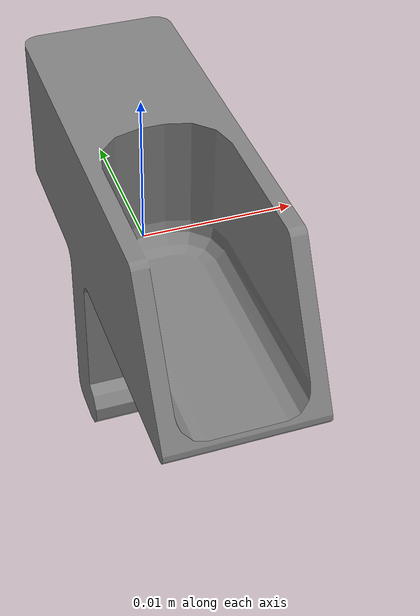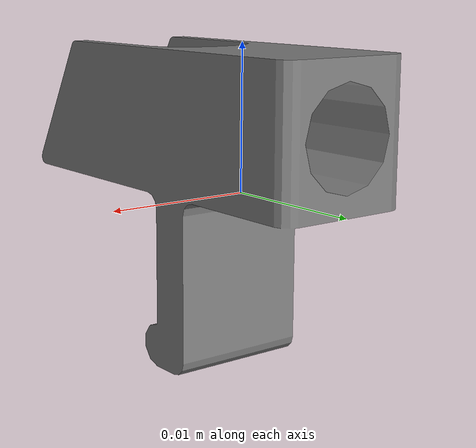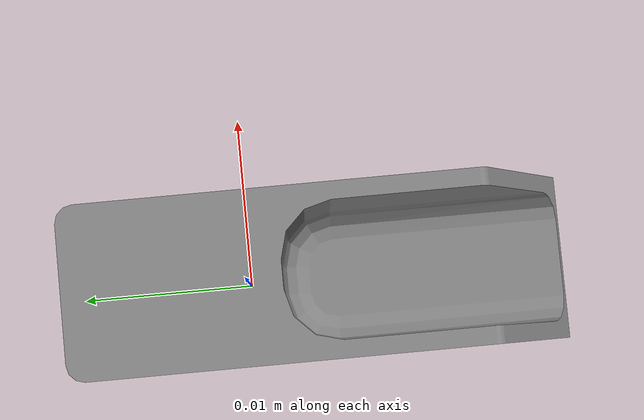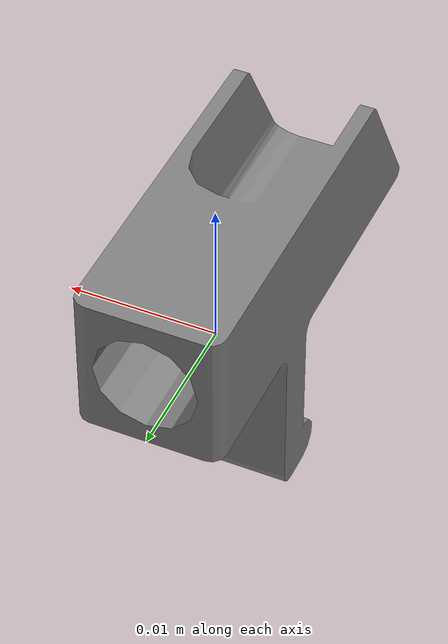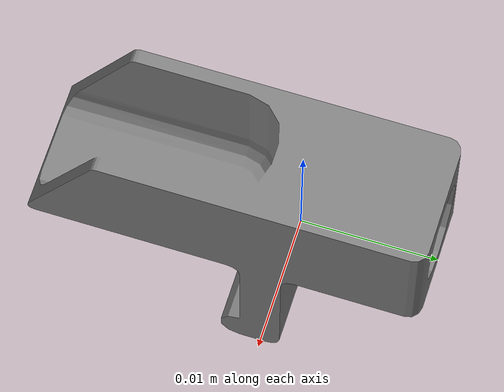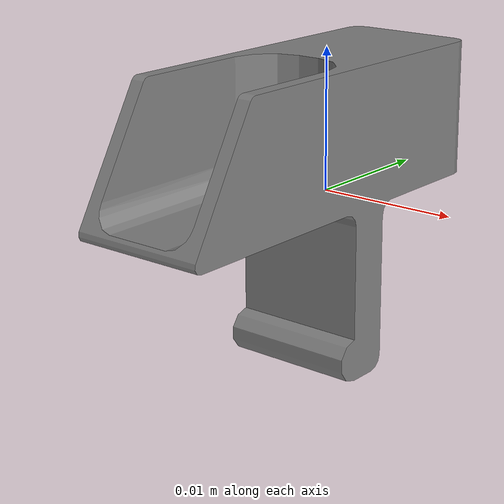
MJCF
<mujoco model="csm_latch_pull">
  <default>
    <default class="visual">
      <geom group="2" type="mesh" contype="0" conaffinity="0"/>
    </default>
    <default class="collision">
      <geom group="3" type="mesh"/>
    </default>
  </default>
  <asset>
    <material name="mtl_csm_latch_pull" specular="0.20000000000000004" shininess="1.0" rgba="0.50196078 0.50196078 0.50196078 1.0"/>
    <mesh file="csm_latch_pull.obj"/>
  </asset>
  <worldbody>
    <body name="csm_latch_pull">
      <geom material="mtl_csm_latch_pull" mesh="csm_latch_pull" class="visual"/>
      <geom mesh="csm_latch_pull" class="collision"/>
    </body>
  </worldbody>
</mujoco>
